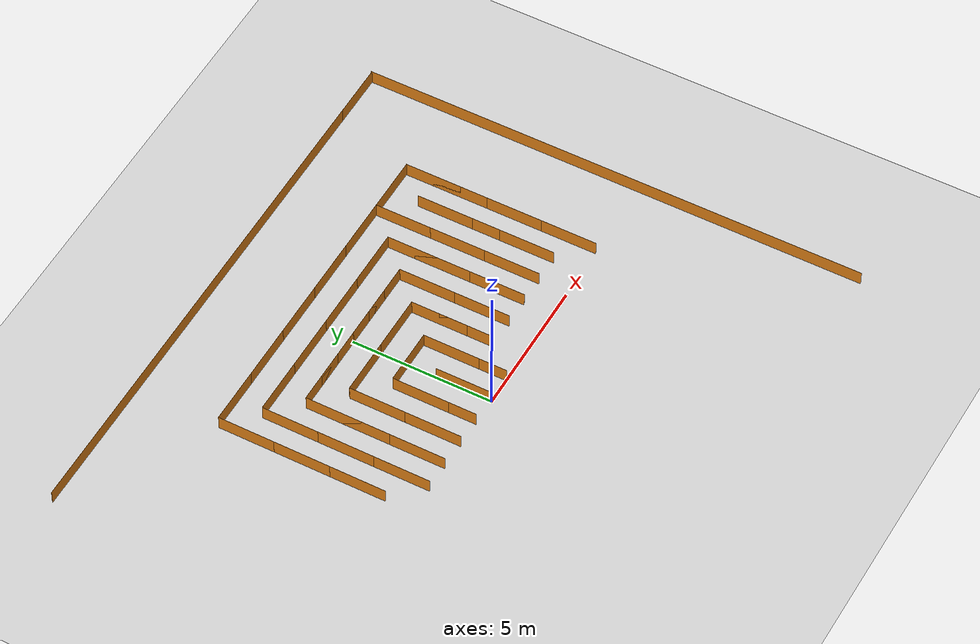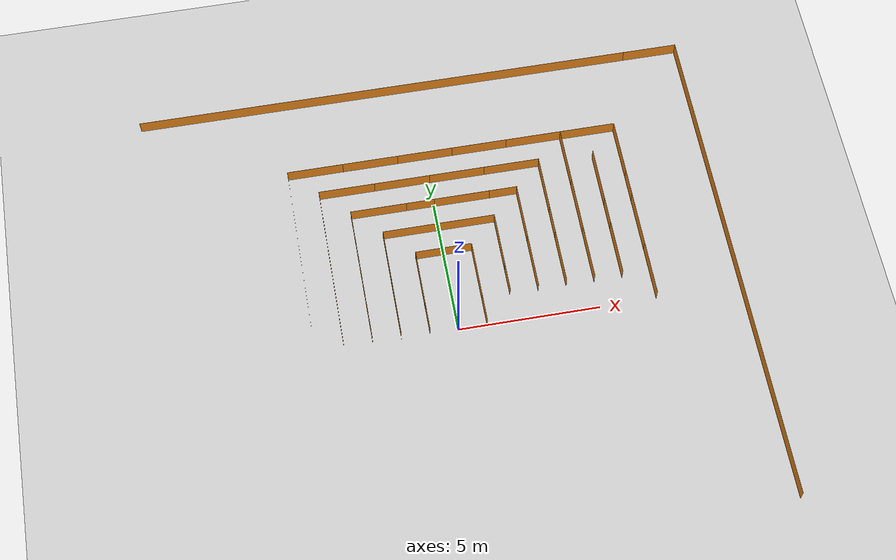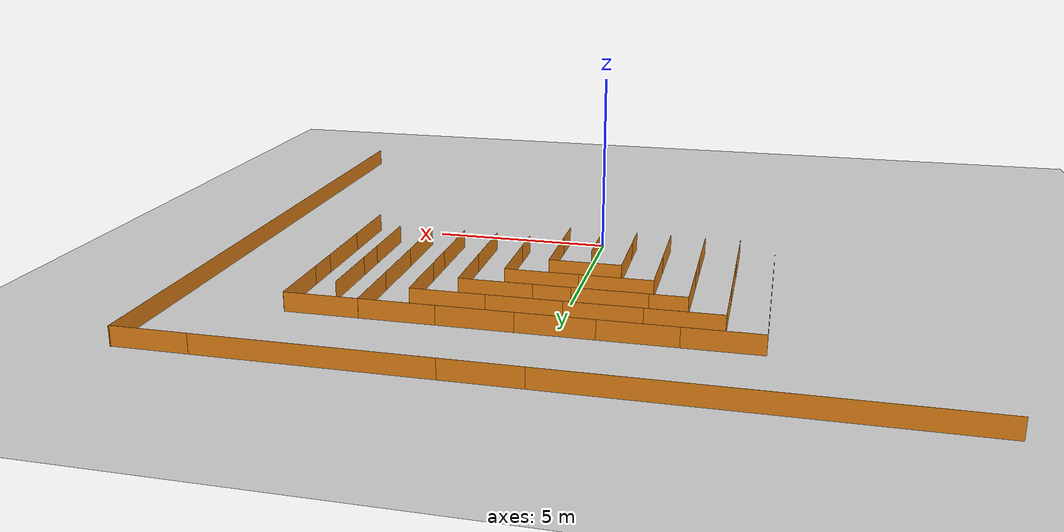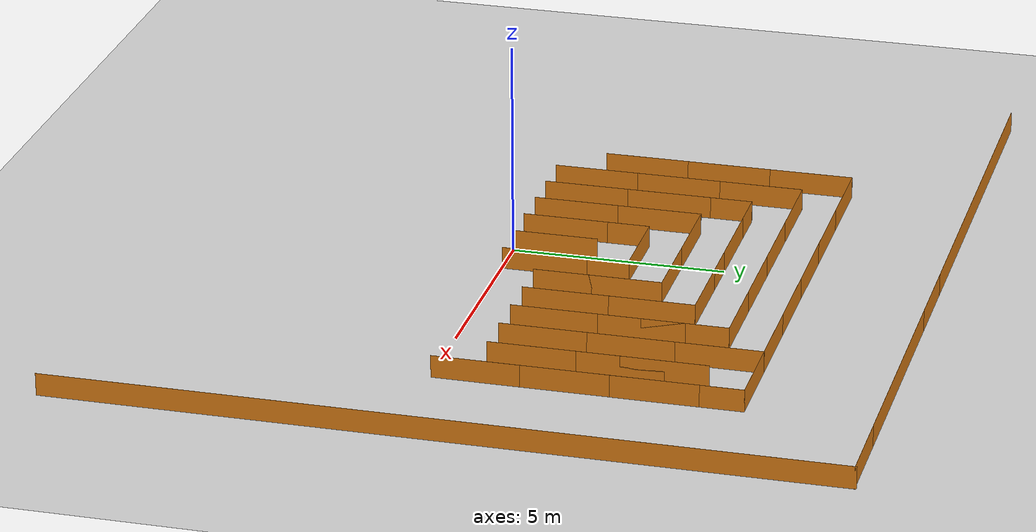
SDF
<sdf version="1.6">
 <world name="default">
  <model name="ground_plane">
   <static>1</static>
   <link name="link">
    <collision name="collision">
     <geometry><plane><normal>0 0 1</normal><size>100 100</size></plane></geometry>
     <surface><friction><ode><mu>100</mu><mu2>50</mu2></ode></friction></surface>
    </collision>
    <visual name="visual">
     <cast_shadows>0</cast_shadows>
     <geometry><plane><normal>0 0 1</normal><size>100 100</size></plane></geometry>
     <material>
      <script><uri>file://media/materials/scripts/gazebo.material</uri><name>Gazebo/Grey</name></script>
     </material>
    </visual>
   </link>
  </model>
  <model name="wall_13_clone_clone_1_clone_0">
   <static>1</static>
   <link name="link">
    <collision name="collision"><geometry><box><size>2.00837 0.001 1</size></box></geometry></collision>
    <visual name="visual">
     <geometry><box><size>2.00837 0.001 1</size></box></geometry>
     <material>
      <script><name>Gazebo/Orange</name><uri>file://media/materials/scripts/gazebo.material</uri></script>
     </material>
    </visual>
   </link>
   <pose>0 1 0 0 0 -1.5708</pose>
  </model>
  <model name="wall_13_clone_clone_1_clone_0_clone_6">
   <static>1</static>
   <link name="link">
    <collision name="collision"><geometry><box><size>2.00836 0.001 1</size></box></geometry></collision>
    <visual name="visual">
     <geometry><box><size>2.00836 0.001 1</size></box></geometry>
     <material>
      <script><name>Gazebo/Orange</name><uri>file://media/materials/scripts/gazebo.material</uri></script>
     </material>
    </visual>
   </link>
   <pose>1 10 0 0 -0 3.14159</pose>
  </model>
  <model name="wall_13_clone_clone_1_clone_0_clone_6_clone_0">
   <static>1</static>
   <link name="link">
    <collision name="collision"><geometry><box><size>18.0752 0.001 1</size></box></geometry></collision>
    <visual name="visual">
     <geometry><box><size>18.0752 0.001 1</size></box></geometry>
     <material>
      <script><name>Gazebo/Orange</name><uri>file://media/materials/scripts/gazebo.material</uri></script>
     </material>
    </visual>
   </link>
   <pose>10 1 0 0 0 -1.5708</pose>
  </model>
  <model name="wall_13_clone_clone_1_clone_0_clone_6_clone_2">
   <static>1</static>
   <link name="link">
    <collision name="collision"><geometry><box><size>18.0752 0.001 1</size></box></geometry></collision>
    <visual name="visual">
     <geometry><box><size>18.0752 0.001 1</size></box></geometry>
     <material>
      <script><name>Gazebo/Orange</name><uri>file://media/materials/scripts/gazebo.material</uri></script>
     </material>
    </visual>
   </link>
   <pose>-1 10 0 0 -0 3.14159</pose>
  </model>
  <model name="wall_13_clone_clone_1_clone_0_clone_clone_16_clone_2_clone">
   <static>1</static>
   <link name="link">
    <collision name="collision"><geometry><box><size>2.00836 0.001 1</size></box></geometry></collision>
    <visual name="visual">
     <geometry><box><size>2.00836 0.001 1</size></box></geometry>
     <material>
      <script><name>Gazebo/Orange</name><uri>file://media/materials/scripts/gazebo.material</uri></script>
     </material>
    </visual>
   </link>
   <pose>9 10 0 0 -0 3.14159</pose>
  </model>
  <model name="wall_13_clone_clone_1_clone_0_clone">
   <static>1</static>
   <link name="link">
    <collision name="collision"><geometry><box><size>2.00836 0.001 1</size></box></geometry></collision>
    <visual name="visual">
     <geometry><box><size>2.00836 0.001 1</size></box></geometry>
     <material>
      <script><name>Gazebo/Orange</name><uri>file://media/materials/scripts/gazebo.material</uri></script>
     </material>
    </visual>
   </link>
   <pose>1 1 0 0 0 -1.5708</pose>
  </model>
  <model name="wall_13_clone_clone_1_clone_0_clone_0_clone">
   <static>1</static>
   <link name="link">
    <collision name="collision"><geometry><box><size>2.00836 0.001 1</size></box></geometry></collision>
    <visual name="visual">
     <geometry><box><size>2.00836 0.001 1</size></box></geometry>
     <material>
      <script><name>Gazebo/Orange</name><uri>file://media/materials/scripts/gazebo.material</uri></script>
     </material>
    </visual>
   </link>
   <pose>1 2 0 0 0 -1.5708</pose>
  </model>
  <model name="wall_13_clone_clone_1_clone_0_clone_0_clone_1_clone_0">
   <static>1</static>
   <link name="link">
    <collision name="collision"><geometry><box><size>2.00836 0.001 1</size></box></geometry></collision>
    <visual name="visual">
     <geometry><box><size>2.00836 0.001 1</size></box></geometry>
     <material>
      <script><name>Gazebo/Orange</name><uri>file://media/materials/scripts/gazebo.material</uri></script>
     </material>
    </visual>
   </link>
   <pose>3 2 0 0 0 -1.5708</pose>
  </model>
  <model name="wall_13_clone_clone_1_clone_0_clone_1">
   <static>1</static>
   <link name="link">
    <collision name="collision"><geometry><box><size>2.00837 0.001 1</size></box></geometry></collision>
    <visual name="visual">
     <geometry><box><size>2.00837 0.001 1</size></box></geometry>
     <material>
      <script><name>Gazebo/Orange</name><uri>file://media/materials/scripts/gazebo.material</uri></script>
     </material>
    </visual>
   </link>
   <pose>-1 1 0 0 0 -1.5708</pose>
  </model>
  <model name="wall_13_clone_clone_1_clone_0_clone_clone_16_clone_1_clone_clone_clone_clone">
   <static>1</static>
   <link name="link">
    <collision name="collision"><geometry><box><size>2.00836 0.001 1</size></box></geometry></collision>
    <visual name="visual">
     <geometry><box><size>2.00836 0.001 1</size></box></geometry>
     <material>
      <script><name>Gazebo/Orange</name><uri>file://media/materials/scripts/gazebo.material</uri></script>
     </material>
    </visual>
   </link>
   <pose>0 3 0 0 -0 3.14159</pose>
  </model>
  <model name="wall_13_clone_clone_1_clone_0_clone_0_clone_0">
   <static>1</static>
   <link name="link">
    <collision name="collision"><geometry><box><size>2.00836 0.001 1</size></box></geometry></collision>
    <visual name="visual">
     <geometry><box><size>2.00836 0.001 1</size></box></geometry>
     <material>
      <script><name>Gazebo/Orange</name><uri>file://media/materials/scripts/gazebo.material</uri></script>
     </material>
    </visual>
   </link>
   <pose>-1 2 0 0 0 -1.5708</pose>
  </model>
  <model name="wall_13_clone_clone_1_clone_0_clone_0_clone_1_clone_clone_1">
   <static>1</static>
   <link name="link">
    <collision name="collision"><geometry><box><size>2.00836 0.001 1</size></box></geometry></collision>
    <visual name="visual">
     <geometry><box><size>2.00836 0.001 1</size></box></geometry>
     <material>
      <script><name>Gazebo/Orange</name><uri>file://media/materials/scripts/gazebo.material</uri></script>
     </material>
    </visual>
   </link>
   <pose>2 2 0 0 0 -1.5708</pose>
  </model>
  <model name="wall_13_clone_clone_1_clone_0_clone_0_clone_1_clone_clone_2_clone">
   <static>1</static>
   <link name="link">
    <collision name="collision"><geometry><box><size>2.00836 0.001 1</size></box></geometry></collision>
    <visual name="visual">
     <geometry><box><size>2.00836 0.001 1</size></box></geometry>
     <material>
      <script><name>Gazebo/Orange</name><uri>file://media/materials/scripts/gazebo.material</uri></script>
     </material>
    </visual>
   </link>
   <pose>3 4 0 0 0 -1.5708</pose>
  </model>
  <model name="wall_13_clone_clone_1_clone_0_clone_0_clone_1_clone_clone_1_clone">
   <static>1</static>
   <link name="link">
    <collision name="collision"><geometry><box><size>2.00836 0.001 1</size></box></geometry></collision>
    <visual name="visual">
     <geometry><box><size>2.00836 0.001 1</size></box></geometry>
     <material>
      <script><name>Gazebo/Orange</name><uri>file://media/materials/scripts/gazebo.material</uri></script>
     </material>
    </visual>
   </link>
   <pose>2 3 0 0 0 -1.5708</pose>
  </model>
  <model name="wall_13_clone_clone_1_clone_0_clone_clone_16_clone_1_clone_clone_clone_0">
   <static>1</static>
   <link name="link">
    <collision name="collision"><geometry><box><size>2.00836 0.001 1</size></box></geometry></collision>
    <visual name="visual">
     <geometry><box><size>2.00836 0.001 1</size></box></geometry>
     <material>
      <script><name>Gazebo/Orange</name><uri>file://media/materials/scripts/gazebo.material</uri></script>
     </material>
    </visual>
   </link>
   <pose>2 5 0 0 -0 3.14159</pose>
  </model>
  <model name="wall_13_clone_clone_1_clone_0_clone_clone_16_clone_1_clone_clone_clone_1">
   <static>1</static>
   <link name="link">
    <collision name="collision"><geometry><box><size>2.00836 0.001 1</size></box></geometry></collision>
    <visual name="visual">
     <geometry><box><size>2.00836 0.001 1</size></box></geometry>
     <material>
      <script><name>Gazebo/Orange</name><uri>file://media/materials/scripts/gazebo.material</uri></script>
     </material>
    </visual>
   </link>
   <pose>1 4 0 0 -0 3.14159</pose>
  </model>
  <model name="wall_13_clone_clone_1_clone_0_clone_clone_16_clone_1_clone_clone_clone_2">
   <static>1</static>
   <link name="link">
    <collision name="collision"><geometry><box><size>2.00836 0.001 1</size></box></geometry></collision>
    <visual name="visual">
     <geometry><box><size>2.00836 0.001 1</size></box></geometry>
     <material>
      <script><name>Gazebo/Orange</name><uri>file://media/materials/scripts/gazebo.material</uri></script>
     </material>
    </visual>
   </link>
   <pose>1 5 0 0 -0 3.14159</pose>
  </model>
  <model name="wall_13_clone_clone_1_clone_0_clone_clone_16_clone_1_clone_clone_clone_1_clone">
   <static>1</static>
   <link name="link">
    <collision name="collision"><geometry><box><size>2.00836 0.001 1</size></box></geometry></collision>
    <visual name="visual">
     <geometry><box><size>2.00836 0.001 1</size></box></geometry>
     <material>
      <script><name>Gazebo/Orange</name><uri>file://media/materials/scripts/gazebo.material</uri></script>
     </material>
    </visual>
   </link>
   <pose>-1 4 0 0 -0 3.14159</pose>
  </model>
  <model name="wall_13_clone_clone_1_clone_0_clone_clone_16_clone_1_clone_clone_clone_1_clone_0">
   <static>1</static>
   <link name="link">
    <collision name="collision"><geometry><box><size>2.00836 0.001 1</size></box></geometry></collision>
    <visual name="visual">
     <geometry><box><size>2.00836 0.001 1</size></box></geometry>
     <material>
      <script><name>Gazebo/Orange</name><uri>file://media/materials/scripts/gazebo.material</uri></script>
     </material>
    </visual>
   </link>
   <pose>-1 5 0 0 -0 3.14159</pose>
  </model>
  <model name="wall_13_clone_clone_1_clone_0_clone_clone_16_clone_1_clone_clone_clone_1_clone_1">
   <static>1</static>
   <link name="link">
    <collision name="collision"><geometry><box><size>2.00836 0.001 1</size></box></geometry></collision>
    <visual name="visual">
     <geometry><box><size>2.00836 0.001 1</size></box></geometry>
     <material>
      <script><name>Gazebo/Orange</name><uri>file://media/materials/scripts/gazebo.material</uri></script>
     </material>
    </visual>
   </link>
   <pose>-2 5 0 0 -0 3.14159</pose>
  </model>
  <model name="wall_13_clone_clone_1_clone_0_clone_0_clone_0_clone">
   <static>1</static>
   <link name="link">
    <collision name="collision"><geometry><box><size>2.00836 0.001 1</size></box></geometry></collision>
    <visual name="visual">
     <geometry><box><size>2.00836 0.001 1</size></box></geometry>
     <material>
      <script><name>Gazebo/Orange</name><uri>file://media/materials/scripts/gazebo.material</uri></script>
     </material>
    </visual>
   </link>
   <pose>-2 3 0 0 0 -1.5708</pose>
  </model>
  <model name="wall_13_clone_clone_1_clone_0_clone_0_clone_0_clone_0">
   <static>1</static>
   <link name="link">
    <collision name="collision"><geometry><box><size>2.00836 0.001 1</size></box></geometry></collision>
    <visual name="visual">
     <geometry><box><size>2.00836 0.001 1</size></box></geometry>
     <material>
      <script><name>Gazebo/Orange</name><uri>file://media/materials/scripts/gazebo.material</uri></script>
     </material>
    </visual>
   </link>
   <pose>-3 4 0 0 0 -1.5708</pose>
  </model>
  <model name="wall_13_clone_clone_1_clone_0_clone_0_clone_0_clone_1">
   <static>1</static>
   <link name="link">
    <collision name="collision"><geometry><box><size>2.00836 0.001 1</size></box></geometry></collision>
    <visual name="visual">
     <geometry><box><size>2.00836 0.001 1</size></box></geometry>
     <material>
      <script><name>Gazebo/Orange</name><uri>file://media/materials/scripts/gazebo.material</uri></script>
     </material>
    </visual>
   </link>
   <pose>-3 3 0 0 0 -1.5708</pose>
  </model>
  <model name="wall_13_clone_clone_1_clone_0_clone_0_clone_0_clone_2">
   <static>1</static>
   <link name="link">
    <collision name="collision"><geometry><box><size>2.00836 0.001 1</size></box></geometry></collision>
    <visual name="visual">
     <geometry><box><size>2.00836 0.001 1</size></box></geometry>
     <material>
      <script><name>Gazebo/Orange</name><uri>file://media/materials/scripts/gazebo.material</uri></script>
     </material>
    </visual>
   </link>
   <pose>-3 1 0 0 0 -1.5708</pose>
  </model>
  <model name="wall_13_clone_clone_1_clone_0_clone_0_clone_0_clone_5">
   <static>1</static>
   <link name="link">
    <collision name="collision"><geometry><box><size>2.00836 0.001 1</size></box></geometry></collision>
    <visual name="visual">
     <geometry><box><size>2.00836 0.001 1</size></box></geometry>
     <material>
      <script><name>Gazebo/Orange</name><uri>file://media/materials/scripts/gazebo.material</uri></script>
     </material>
    </visual>
   </link>
   <pose>-2 1 0 0 0 -1.5708</pose>
  </model>
  <model name="wall_13_clone_clone_1_clone_0_clone_0_clone_1_clone_clone_clone_4">
   <static>1</static>
   <link name="link">
    <collision name="collision"><geometry><box><size>2.00836 0.001 1</size></box></geometry></collision>
    <visual name="visual">
     <geometry><box><size>2.00836 0.001 1</size></box></geometry>
     <material>
      <script><name>Gazebo/Orange</name><uri>file://media/materials/scripts/gazebo.material</uri></script>
     </material>
    </visual>
   </link>
   <pose>4 2 0 0 0 -1.5708</pose>
  </model>
  <model name="wall_13_clone_clone_1_clone_0_clone_0_clone_1_clone_clone_clone_5">
   <static>1</static>
   <link name="link">
    <collision name="collision"><geometry><box><size>2.00836 0.001 1</size></box></geometry></collision>
    <visual name="visual">
     <geometry><box><size>2.00836 0.001 1</size></box></geometry>
     <material>
      <script><name>Gazebo/Orange</name><uri>file://media/materials/scripts/gazebo.material</uri></script>
     </material>
    </visual>
   </link>
   <pose>5 2 0 0 0 -1.5708</pose>
  </model>
  <model name="wall_13_clone_clone_1_clone_0_clone_0_clone_1_clone_clone_clone_6">
   <static>1</static>
   <link name="link">
    <collision name="collision"><geometry><box><size>2.00836 0.001 1</size></box></geometry></collision>
    <visual name="visual">
     <geometry><box><size>2.00836 0.001 1</size></box></geometry>
     <material>
      <script><name>Gazebo/Orange</name><uri>file://media/materials/scripts/gazebo.material</uri></script>
     </material>
    </visual>
   </link>
   <pose>4 4 0 0 0 -1.5708</pose>
  </model>
  <model name="wall_13_clone_clone_1_clone_0_clone_0_clone_1_clone_clone_clone_7">
   <static>1</static>
   <link name="link">
    <collision name="collision"><geometry><box><size>2.00836 0.001 1</size></box></geometry></collision>
    <visual name="visual">
     <geometry><box><size>2.00836 0.001 1</size></box></geometry>
     <material>
      <script><name>Gazebo/Orange</name><uri>file://media/materials/scripts/gazebo.material</uri></script>
     </material>
    </visual>
   </link>
   <pose>5 4 0 0 0 -1.5708</pose>
  </model>
  <model name="wall_13_clone_clone_1_clone_0_clone_0_clone_1_clone_clone_clone_8">
   <static>1</static>
   <link name="link">
    <collision name="collision"><geometry><box><size>2.00836 0.001 1</size></box></geometry></collision>
    <visual name="visual">
     <geometry><box><size>2.00836 0.001 1</size></box></geometry>
     <material>
      <script><name>Gazebo/Orange</name><uri>file://media/materials/scripts/gazebo.material</uri></script>
     </material>
    </visual>
   </link>
   <pose>4 5 0 0 0 -1.5708</pose>
  </model>
  <model name="wall_13_clone_clone_1_clone_0_clone_0_clone_1_clone_clone_clone_9">
   <static>1</static>
   <link name="link">
    <collision name="collision"><geometry><box><size>2.00836 0.001 1</size></box></geometry></collision>
    <visual name="visual">
     <geometry><box><size>2.00836 0.001 1</size></box></geometry>
     <material>
      <script><name>Gazebo/Orange</name><uri>file://media/materials/scripts/gazebo.material</uri></script>
     </material>
    </visual>
   </link>
   <pose>5 6 0 0 0 -1.5708</pose>
  </model>
  <model name="wall_13_clone_clone_1_clone_0_clone_clone_16_clone_1_clone_clone_clone_0_clone">
   <static>1</static>
   <link name="link">
    <collision name="collision"><geometry><box><size>2.00836 0.001 1</size></box></geometry></collision>
    <visual name="visual">
     <geometry><box><size>2.00836 0.001 1</size></box></geometry>
     <material>
      <script><name>Gazebo/Orange</name><uri>file://media/materials/scripts/gazebo.material</uri></script>
     </material>
    </visual>
   </link>
   <pose>3 6 0 0 -0 3.14159</pose>
  </model>
  <model name="wall_13_clone_clone_1_clone_0_clone_clone_16_clone_1_clone_clone_clone_0_clone_0">
   <static>1</static>
   <link name="link">
    <collision name="collision"><geometry><box><size>2.00836 0.001 1</size></box></geometry></collision>
    <visual name="visual">
     <geometry><box><size>2.00836 0.001 1</size></box></geometry>
     <material>
      <script><name>Gazebo/Orange</name><uri>file://media/materials/scripts/gazebo.material</uri></script>
     </material>
    </visual>
   </link>
   <pose>4 7 0 0 -0 3.14159</pose>
  </model>
  <model name="wall_13_clone_clone_1_clone_0_clone_clone_16_clone_1_clone_clone_clone_0_clone_1">
   <static>1</static>
   <link name="link">
    <collision name="collision"><geometry><box><size>2.00836 0.001 1</size></box></geometry></collision>
    <visual name="visual">
     <geometry><box><size>2.00836 0.001 1</size></box></geometry>
     <material>
      <script><name>Gazebo/Orange</name><uri>file://media/materials/scripts/gazebo.material</uri></script>
     </material>
    </visual>
   </link>
   <pose>2 7 0 0 -0 3.14159</pose>
  </model>
  <model name="wall_13_clone_clone_1_clone_0_clone_clone_16_clone_1_clone_clone_clone_0_clone_2">
   <static>1</static>
   <link name="link">
    <collision name="collision"><geometry><box><size>2.00836 0.001 1</size></box></geometry></collision>
    <visual name="visual">
     <geometry><box><size>2.00836 0.001 1</size></box></geometry>
     <material>
      <script><name>Gazebo/Orange</name><uri>file://media/materials/scripts/gazebo.material</uri></script>
     </material>
    </visual>
   </link>
   <pose>1 6 0 0 -0 3.14159</pose>
  </model>
  <model name="wall_13_clone_clone_1_clone_0_clone_clone_16_clone_1_clone_clone_clone_0_clone_3">
   <static>1</static>
   <link name="link">
    <collision name="collision"><geometry><box><size>2.00836 0.001 1</size></box></geometry></collision>
    <visual name="visual">
     <geometry><box><size>2.00836 0.001 1</size></box></geometry>
     <material>
      <script><name>Gazebo/Orange</name><uri>file://media/materials/scripts/gazebo.material</uri></script>
     </material>
    </visual>
   </link>
   <pose>0 7 0 0 -0 3.14159</pose>
  </model>
  <model name="wall_13_clone_clone_1_clone_0_clone_clone_16_clone_1_clone_clone_clone_0_clone_4">
   <static>1</static>
   <link name="link">
    <collision name="collision"><geometry><box><size>2.00836 0.001 1</size></box></geometry></collision>
    <visual name="visual">
     <geometry><box><size>2.00836 0.001 1</size></box></geometry>
     <material>
      <script><name>Gazebo/Orange</name><uri>file://media/materials/scripts/gazebo.material</uri></script>
     </material>
    </visual>
   </link>
   <pose>-1 6 0 0 -0 3.14159</pose>
  </model>
  <model name="wall_13_clone_clone_1_clone_0_clone_clone_16_clone_1_clone_clone_clone_0_clone_5">
   <static>1</static>
   <link name="link">
    <collision name="collision"><geometry><box><size>2.00836 0.001 1</size></box></geometry></collision>
    <visual name="visual">
     <geometry><box><size>2.00836 0.001 1</size></box></geometry>
     <material>
      <script><name>Gazebo/Orange</name><uri>file://media/materials/scripts/gazebo.material</uri></script>
     </material>
    </visual>
   </link>
   <pose>-2 7 0 0 -0 3.14159</pose>
  </model>
  <model name="wall_13_clone_clone_1_clone_0_clone_clone_16_clone_1_clone_clone_clone_0_clone_6">
   <static>1</static>
   <link name="link">
    <collision name="collision"><geometry><box><size>2.00836 0.001 1</size></box></geometry></collision>
    <visual name="visual">
     <geometry><box><size>2.00836 0.001 1</size></box></geometry>
     <material>
      <script><name>Gazebo/Orange</name><uri>file://media/materials/scripts/gazebo.material</uri></script>
     </material>
    </visual>
   </link>
   <pose>-3 6 0 0 -0 3.14159</pose>
  </model>
  <model name="wall_13_clone_clone_1_clone_0_clone_clone_16_clone_1_clone_clone_clone_0_clone_7">
   <static>1</static>
   <link name="link">
    <collision name="collision"><geometry><box><size>2.00836 0.001 1</size></box></geometry></collision>
    <visual name="visual">
     <geometry><box><size>2.00836 0.001 1</size></box></geometry>
     <material>
      <script><name>Gazebo/Orange</name><uri>file://media/materials/scripts/gazebo.material</uri></script>
     </material>
    </visual>
   </link>
   <pose>-4 7 0 0 -0 3.14159</pose>
  </model>
  <model name="wall_13_clone_clone_1_clone_0_clone_0_clone_0_clone_0_clone">
   <static>1</static>
   <link name="link">
    <collision name="collision"><geometry><box><size>2.00836 0.001 1</size></box></geometry></collision>
    <visual name="visual">
     <geometry><box><size>2.00836 0.001 1</size></box></geometry>
     <material>
      <script><name>Gazebo/Orange</name><uri>file://media/materials/scripts/gazebo.material</uri></script>
     </material>
    </visual>
   </link>
   <pose>-4 5 0 0 0 -1.5708</pose>
  </model>
  <model name="wall_13_clone_clone_1_clone_0_clone_0_clone_0_clone_0_clone_0">
   <static>1</static>
   <link name="link">
    <collision name="collision"><geometry><box><size>2.00836 0.001 1</size></box></geometry></collision>
    <visual name="visual">
     <geometry><box><size>2.00836 0.001 1</size></box></geometry>
     <material>
      <script><name>Gazebo/Orange</name><uri>file://media/materials/scripts/gazebo.material</uri></script>
     </material>
    </visual>
   </link>
   <pose>-5 6 0 0 0 -1.5708</pose>
  </model>
  <model name="wall_13_clone_clone_1_clone_0_clone_0_clone_0_clone_0_clone_1">
   <static>1</static>
   <link name="link">
    <collision name="collision"><geometry><box><size>2.00836 0.001 1</size></box></geometry></collision>
    <visual name="visual">
     <geometry><box><size>2.00836 0.001 1</size></box></geometry>
     <material>
      <script><name>Gazebo/Orange</name><uri>file://media/materials/scripts/gazebo.material</uri></script>
     </material>
    </visual>
   </link>
   <pose>-5 4 0 0 0 -1.5708</pose>
  </model>
  <model name="wall_13_clone_clone_1_clone_0_clone_0_clone_0_clone_0_clone_2">
   <static>1</static>
   <link name="link">
    <collision name="collision"><geometry><box><size>2.00836 0.001 1</size></box></geometry></collision>
    <visual name="visual">
     <geometry><box><size>2.00836 0.001 1</size></box></geometry>
     <material>
      <script><name>Gazebo/Orange</name><uri>file://media/materials/scripts/gazebo.material</uri></script>
     </material>
    </visual>
   </link>
   <pose>-4 3 0 0 0 -1.5708</pose>
  </model>
  <model name="wall_13_clone_clone_1_clone_0_clone_0_clone_0_clone_0_clone_3">
   <static>1</static>
   <link name="link">
    <collision name="collision"><geometry><box><size>2.00836 0.001 1</size></box></geometry></collision>
    <visual name="visual">
     <geometry><box><size>2.00836 0.001 1</size></box></geometry>
     <material>
      <script><name>Gazebo/Orange</name><uri>file://media/materials/scripts/gazebo.material</uri></script>
     </material>
    </visual>
   </link>
   <pose>-5 2 0 0 0 -1.5708</pose>
  </model>
  <model name="wall_13_clone_clone_1_clone_0_clone_0_clone_0_clone_0_clone_4">
   <static>1</static>
   <link name="link">
    <collision name="collision"><geometry><box><size>2.00836 0.001 1</size></box></geometry></collision>
    <visual name="visual">
     <geometry><box><size>2.00836 0.001 1</size></box></geometry>
     <material>
      <script><name>Gazebo/Orange</name><uri>file://media/materials/scripts/gazebo.material</uri></script>
     </material>
    </visual>
   </link>
   <pose>-4 1 0 0 0 -1.5708</pose>
  </model>
  <model name="wall_13_clone_clone_1_clone_0_clone_0_clone_1_clone_clone_clone_clone_5">
   <static>1</static>
   <link name="link">
    <collision name="collision"><geometry><box><size>2.00836 0.001 1</size></box></geometry></collision>
    <visual name="visual">
     <geometry><box><size>2.00836 0.001 1</size></box></geometry>
     <material>
      <script><name>Gazebo/Orange</name><uri>file://media/materials/scripts/gazebo.material</uri></script>
     </material>
    </visual>
   </link>
   <pose>7 1 0 0 0 -1.5708</pose>
  </model>
  <model name="wall_13_clone_clone_1_clone_0_clone_0_clone_1_clone_clone_clone_clone_6">
   <static>1</static>
   <link name="link">
    <collision name="collision"><geometry><box><size>2.00836 0.001 1</size></box></geometry></collision>
    <visual name="visual">
     <geometry><box><size>2.00836 0.001 1</size></box></geometry>
     <material>
      <script><name>Gazebo/Orange</name><uri>file://media/materials/scripts/gazebo.material</uri></script>
     </material>
    </visual>
   </link>
   <pose>6 2 0 0 0 -1.5708</pose>
  </model>
  <model name="wall_13_clone_clone_1_clone_0_clone_0_clone_1_clone_clone_clone_clone_7">
   <static>1</static>
   <link name="link">
    <collision name="collision"><geometry><box><size>2.00836 0.001 1</size></box></geometry></collision>
    <visual name="visual">
     <geometry><box><size>2.00836 0.001 1</size></box></geometry>
     <material>
      <script><name>Gazebo/Orange</name><uri>file://media/materials/scripts/gazebo.material</uri></script>
     </material>
    </visual>
   </link>
   <pose>7 3 0 0 0 -1.5708</pose>
  </model>
  <model name="wall_13_clone_clone_1_clone_0_clone_0_clone_1_clone_clone_clone_clone_8">
   <static>1</static>
   <link name="link">
    <collision name="collision"><geometry><box><size>2.00836 0.001 1</size></box></geometry></collision>
    <visual name="visual">
     <geometry><box><size>2.00836 0.001 1</size></box></geometry>
     <material>
      <script><name>Gazebo/Orange</name><uri>file://media/materials/scripts/gazebo.material</uri></script>
     </material>
    </visual>
   </link>
   <pose>6 4 0 0 0 -1.5708</pose>
  </model>
  <model name="wall_13_clone_clone_1_clone_0_clone_0_clone_1_clone_clone_clone_clone_9">
   <static>1</static>
   <link name="link">
    <collision name="collision"><geometry><box><size>2.00836 0.001 1</size></box></geometry></collision>
    <visual name="visual">
     <geometry><box><size>2.00836 0.001 1</size></box></geometry>
     <material>
      <script><name>Gazebo/Orange</name><uri>file://media/materials/scripts/gazebo.material</uri></script>
     </material>
    </visual>
   </link>
   <pose>7 5 0 0 0 -1.5708</pose>
  </model>
  <model name="wall_13_clone_clone_1_clone_0_clone_0_clone_1_clone_clone_clone_clone_10">
   <static>1</static>
   <link name="link">
    <collision name="collision"><geometry><box><size>2.00836 0.001 1</size></box></geometry></collision>
    <visual name="visual">
     <geometry><box><size>2.00836 0.001 1</size></box></geometry>
     <material>
      <script><name>Gazebo/Orange</name><uri>file://media/materials/scripts/gazebo.material</uri></script>
     </material>
    </visual>
   </link>
   <pose>7 6 0 0 0 -1.5708</pose>
  </model>
  <model name="wall_13_clone_clone_1_clone_0_clone_clone_16_clone_1_clone_clone_clone_0_clone_clone">
   <static>1</static>
   <link name="link">
    <collision name="collision"><geometry><box><size>2.00836 0.001 1</size></box></geometry></collision>
    <visual name="visual">
     <geometry><box><size>2.00836 0.001 1</size></box></geometry>
     <material>
      <script><name>Gazebo/Orange</name><uri>file://media/materials/scripts/gazebo.material</uri></script>
     </material>
    </visual>
   </link>
   <pose>6 7 0 0 -0 3.14159</pose>
  </model>
  <model name="wall_13_clone_clone_1_clone_0_clone_0_clone_1_clone_clone_clone_clone_8_clone">
   <static>1</static>
   <link name="link">
    <collision name="collision"><geometry><box><size>2.00836 0.001 1</size></box></geometry></collision>
    <visual name="visual">
     <geometry><box><size>2.00836 0.001 1</size></box></geometry>
     <material>
      <script><name>Gazebo/Orange</name><uri>file://media/materials/scripts/gazebo.material</uri></script>
     </material>
    </visual>
   </link>
   <pose>6 5 0 0 0 -1.5708</pose>
  </model>
 </world>
</sdf>
